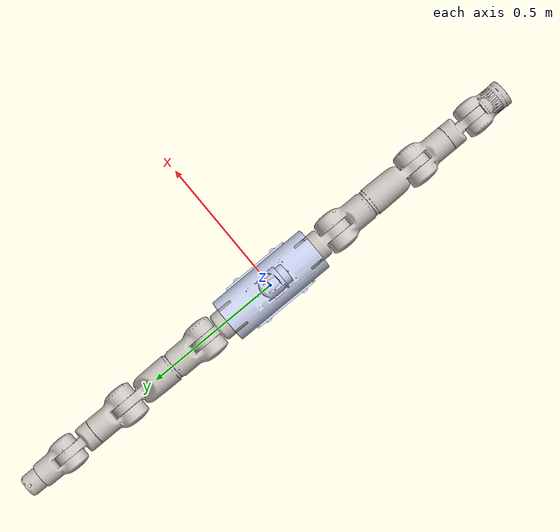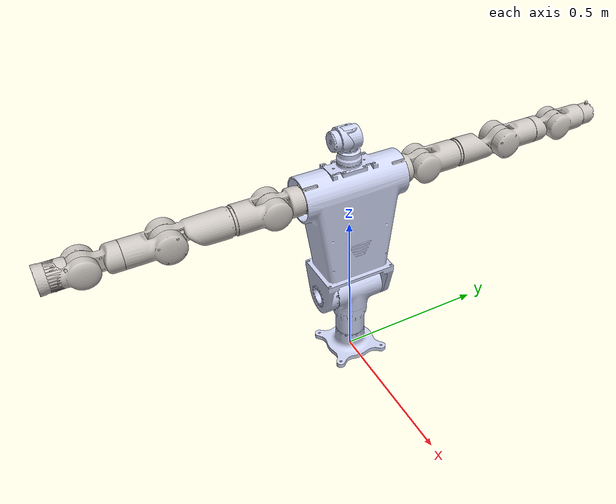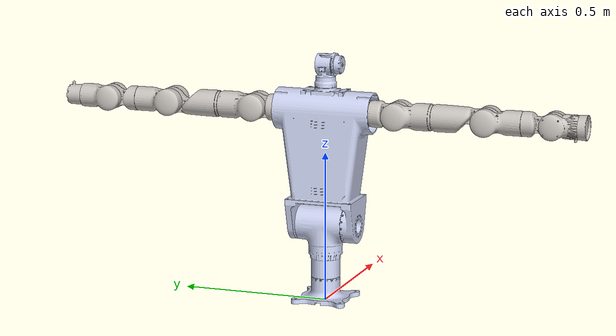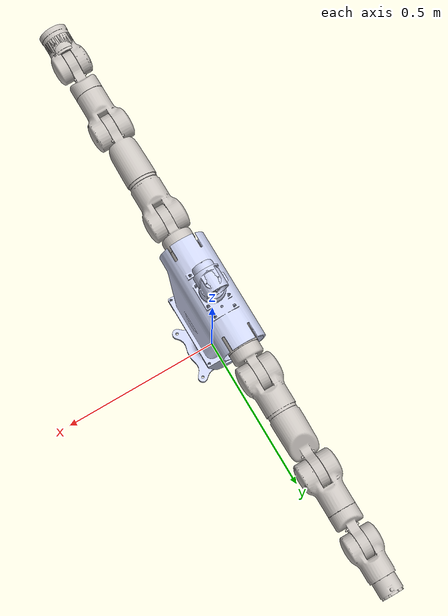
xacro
<?xml version="1.0" encoding="utf-8"?>
<robot name="h1" xmlns:xacro="http://ros.org/wiki/xacro">
  <xacro:property name = "pkg_address" value = "file://$(find h1_description)"/>

  <link name="fake_link">
      <visual>
          <origin xyz="0 0 0" rpy="0 0 0" />
          <geometry>
              <box size="0.001 0.001 0.001" />
          </geometry>
      </visual>
  </link>
  <joint name="fake_joint" type="fixed">
      <origin xyz="0 0 0.001" rpy="0 0 0" />
      <parent link="fake_link"/>
      <child link="base_link"/>
  </joint>
  <link
    name="base_link">
    <inertial>
      <origin
        xyz="0.000740033557061207 -2.89813835710668E-09 -0.238489145485207"
        rpy="0 0 0" />
      <mass
        value="1.49428013879955" />
      <inertia
        ixx="0.00364768535837031"
        ixy="-6.32316601308359E-12"
        ixz="1.99592617911289E-05"
        iyy="0.00358098929975865"
        iyz="1.694588043219E-10"
        izz="0.00589788150834425" />
    </inertial>
    <visual>
      <origin
        xyz="0 0 0.2605"
        rpy="0 0 0" />
      <geometry>
        <mesh
          filename="${pkg_address}/meshes/visual/base_link.STL" />
      </geometry>
      <material
        name="">
        <color
          rgba="0.792156862745098 0.819607843137255 0.933333333333333 1" />
      </material>
    </visual>
    <collision>
      <origin
        xyz="0 0 0.2605"
        rpy="0 0 0" />
      <geometry>
        <mesh
          filename="${pkg_address}/meshes/visual/base_link.STL" />
      </geometry>
    </collision>
  </link>
  <link
    name="link-J1">
    <inertial>
      <origin
        xyz="-3.57404692468406E-06 0.000688736209329804 -0.048157767674012"
        rpy="0 0 0" />
      <mass
        value="2.54080545346503" />
      <inertia
        ixx="0.0132749391170704"
        ixy="2.31449133162819E-07"
        ixz="-2.13862912949809E-07"
        iyy="0.0125700390893002"
        iyz="0.000459806363175522"
        izz="0.00481564822894174" />
    </inertial>
    <visual>
      <origin
        xyz="0 0 0"
        rpy="0 0 0" />
      <geometry>
        <mesh
          filename="${pkg_address}/meshes/visual/link-J1.STL" />
      </geometry>
      <material
        name="">
        <color
          rgba="0.792156862745098 0.819607843137255 0.933333333333333 1" />
      </material>
    </visual>
    <collision>
      <origin
        xyz="0 0 0"
        rpy="0 0 0" />
      <geometry>
        <mesh
          filename="${pkg_address}/meshes/visual/link-J1.STL" />
      </geometry>
    </collision>
  </link>
  <joint
    name="J1"
    type="revolute">
    <origin
      xyz="0 0 0.2605"
      rpy="0 0 0" />
    <parent
      link="base_link" />
    <child
      link="link-J1" />
    <axis
      xyz="0 0 -1" />
    <limit
      lower="-3.0543"
      upper="3.0543"
      effort="0"
      velocity="0" />
  </joint>
  <link
    name="link-Body">
    <inertial>
      <origin
        xyz="0.00246787748091909 0.249525517413171 0.000596924634415743"
        rpy="0 0 0" />
      <mass
        value="3.3194687242283" />
      <inertia
        ixx="0.0418183673295349"
        ixy="0.000751091538850231"
        ixz="2.15290683247481E-07"
        iyy="0.0233117881051513"
        iyz="-1.23200531111601E-05"
        izz="0.0309354173276001" />
    </inertial>
    <visual>
      <origin
        xyz="0 0 0"
        rpy="0 0 0" />
      <geometry>
        <mesh
          filename="${pkg_address}/meshes/visual/link-Body.STL" />
      </geometry>
      <material
        name="">
        <color
          rgba="0.792156862745098 0.819607843137255 0.933333333333333 1" />
      </material>
    </visual>
    <collision>
      <origin
        xyz="0 0 0"
        rpy="0 0 0" />
      <geometry>
        <mesh
          filename="${pkg_address}/meshes/visual/link-Body.STL" />
      </geometry>
    </collision>
  </link>
  <joint
    name="Body"
    type="revolute">
    <origin
      xyz="0 0  0"
      rpy="1.5708 0 0" />
    <parent
      link="link-J1" />
    <child
      link="link-Body" />
    <axis
      xyz="0 0 1" />
    <limit
      lower="-1"
      upper="1"
      effort="0"
      velocity="0" />
  </joint>
  <link
    name="link-R0">
    <inertial>
      <origin
        xyz="-5.36064345635264E-06 -0.000550017814507475 0.0379327952026104"
        rpy="0 0 0" />
      <mass
        value="3.46085446917408" />
      <inertia
        ixx="0.00462413861199453"
        ixy="1.10874369896872E-06"
        ixz="-5.2405532829301E-06"
        iyy="0.00500474262753878"
        iyz="-4.74046783101803E-05"
        izz="0.00508731121895653" />
    </inertial>
    <visual>
      <origin
        xyz="0 0 0"
        rpy="0 0 0" />
      <geometry>
        <mesh
          filename="${pkg_address}/meshes/visual/link-R0.STL" />
      </geometry>
      <material
        name="">
        <color
          rgba="0.776470588235294 0.756862745098039 0.737254901960784 1" />
      </material>
    </visual>
    <collision>
      <origin
        xyz="0 0 0"
        rpy="0 0 0" />
      <geometry>
        <mesh
          filename="${pkg_address}/meshes/visual/link-R0.STL" />
      </geometry>
    </collision>
  </link>
  <joint
    name="R-J0"
    type="fixed">
    <origin
      xyz="0 0.38 0.075"
      rpy="0 0 0" />
    <parent
      link="link-Body" />
    <child
      link="link-R0" />
    <axis
      xyz="0 0 0" />
    <limit
      lower="0"
      upper="0"
      effort="0"
      velocity="0" />
  </joint>
  <link
    name="link-R1">
    <inertial>
      <origin
        xyz="-0.00391495384324204 3.44953460352793E-05 -0.0356925083781218"
        rpy="0 0 0" />
      <mass
        value="3.84687374351761" />
      <inertia
        ixx="0.00397927734142592"
        ixy="1.32956171092165E-06"
        ixz="-2.11559425234039E-06"
        iyy="0.0032661789850321"
        iyz="1.14620036600572E-06"
        izz="0.00266637011175435" />
    </inertial>
    <visual>
      <origin
        xyz="0 0 0"
        rpy="0 0 0" />
      <geometry>
        <mesh
          filename="${pkg_address}/meshes/visual/link-R1.STL" />
      </geometry>
      <material
        name="">
        <color
          rgba="0.776470588235294 0.756862745098039 0.737254901960784 1" />
      </material>
    </visual>
    <collision>
      <origin
        xyz="0 0 0"
        rpy="0 0 0" />
      <geometry>
        <mesh
          filename="${pkg_address}/meshes/visual/link-R1.STL" />
      </geometry>
    </collision>
  </link>
  <joint
    name="R-J1"
    type="revolute">
    <origin
      xyz="0 0 0.172"
      rpy="0 0 0" />
    <parent
      link="link-R0" />
    <child
      link="link-R1" />
    <axis
      xyz="0 0 1" />
    <limit
      lower="-3.0543"
      upper="3.0543"
      effort="0"
      velocity="0" />
  </joint>
  <link
    name="link-R2">
    <inertial>
      <origin
        xyz="3.86490177528565E-07 -0.0452420553770264 0.0066905148073625"
        rpy="0 0 0" />
      <mass
        value="4.59473657520835" />
      <inertia
        ixx="0.0149236633858357"
        ixy="4.66017394464824E-06"
        ixz="6.67787071273893E-07"
        iyy="0.00622043748645023"
        iyz="-0.00157051411608724"
        izz="0.0130507506497026" />
    </inertial>
    <visual>
      <origin
        xyz="0 0 0"
        rpy="0 0 0" />
      <geometry>
        <mesh
          filename="${pkg_address}/meshes/visual/link-R2.STL" />
      </geometry>
      <material
        name="">
        <color
          rgba="0.776470588235294 0.756862745098039 0.737254901960784 1" />
      </material>
    </visual>
    <collision>
      <origin
        xyz="0 0 0"
        rpy="0 0 0" />
      <geometry>
        <mesh
          filename="${pkg_address}/meshes/visual/link-R2.STL" />
      </geometry>
    </collision>
  </link>
  <joint
    name="R-J2"
    type="revolute">
    <origin
      xyz="0 0 0"
      rpy="-1.5708 0 -1.5708" />
    <parent
      link="link-R1" />
    <child
      link="link-R2" />
    <axis
      xyz="0 0 1" />
    <limit
      lower="-1.6"
      upper="1.6"
      effort="0"
      velocity="0" />
  </joint>
  <link
    name="link-R3">
    <inertial>
      <origin
        xyz="0.00324047095926137 0.00110288578196249 -0.0819918016100478"
        rpy="0 0 0" />
      <mass
        value="4.5854332927521" />
      <inertia
        ixx="0.0115360168840183"
        ixy="4.15752513335911E-06"
        ixz="1.48969963687349E-05"
        iyy="0.0108939919528904"
        iyz="-0.000234057856310516"
        izz="0.00358981276852546" />
    </inertial>
    <visual>
      <origin
        xyz="0 0 0"
        rpy="0 0 0" />
      <geometry>
        <mesh
          filename="${pkg_address}/meshes/visual/link-R3.STL" />
      </geometry>
      <material
        name="">
        <color
          rgba="0.776470588235294 0.756862745098039 0.737254901960784 1" />
      </material>
    </visual>
    <collision>
      <origin
        xyz="0 0 0"
        rpy="0 0 0" />
      <geometry>
        <mesh
          filename="${pkg_address}/meshes/visual/link-R3.STL" />
      </geometry>
    </collision>
  </link>
  <joint
    name="R-J3"
    type="revolute">
    <origin
      xyz="0 -0.3 0"
      rpy="1.5708 -1.5708 0" />
    <parent
      link="link-R2" />
    <child
      link="link-R3" />
    <axis
      xyz="0 0 1" />
    <limit
      lower="-3.0543"
      upper="3.0543"
      effort="0"
      velocity="0" />
  </joint>
  <link
    name="link-R4">
    <inertial>
      <origin
        xyz="3.18423349929819E-05 -0.0368779539653267 -0.0139387490180007"
        rpy="0 0 0" />
      <mass
        value="3.87071086851708" />
      <inertia
        ixx="0.0111305426375428"
        ixy="-2.98701447860813E-06"
        ixz="-4.85972985817775E-06"
        iyy="0.00460974095759748"
        iyz="0.00198988285390344"
        izz="0.00993670762454385" />
    </inertial>
    <visual>
      <origin
        xyz="0 0 0"
        rpy="0 0 0" />
      <geometry>
        <mesh
          filename="${pkg_address}/meshes/visual/link-R4.STL" />
      </geometry>
      <material
        name="">
        <color
          rgba="0.776470588235294 0.756862745098039 0.737254901960784 1" />
      </material>
    </visual>
    <collision>
      <origin
        xyz="0 0 0"
        rpy="0 0 0" />
      <geometry>
        <mesh
          filename="${pkg_address}/meshes/visual/link-R4.STL" />
      </geometry>
    </collision>
  </link>
  <joint
    name="R-J4"
    type="revolute">
    <origin
      xyz="0 0 0"
      rpy="-1.5708 0 -1.5708" />
    <parent
      link="link-R3" />
    <child
      link="link-R4" />
    <axis
      xyz="0 0 1" />
    <limit
      lower="-1.7"
      upper="2.2"
      effort="0"
      velocity="0" />
  </joint>
  <link
    name="link-R5">
    <inertial>
      <origin
        xyz="0.00322215689066335 7.4948711252687E-05 -0.0572975679008713"
        rpy="0 0 0" />
      <mass
        value="1.82124545231834" />
      <inertia
        ixx="0.00278208630631441"
        ixy="7.08235437752721E-08"
        ixz="-4.67880502096544E-05"
        iyy="0.00248903276285"
        iyz="8.97378635589642E-07"
        izz="0.00124650141864315" />
    </inertial>
    <visual>
      <origin
        xyz="0 0 0"
        rpy="0 0 0" />
      <geometry>
        <mesh
          filename="${pkg_address}/meshes/visual/link-R5.STL" />
      </geometry>
      <material
        name="">
        <color
          rgba="0.776470588235294 0.756862745098039 0.737254901960784 1" />
      </material>
    </visual>
    <collision>
      <origin
        xyz="0 0 0"
        rpy="0 0 0" />
      <geometry>
        <mesh
          filename="${pkg_address}/meshes/visual/link-R5.STL" />
      </geometry>
    </collision>
  </link>
  <joint
    name="R-J5"
    type="revolute">
    <origin
      xyz="0 -0.22 0"
      rpy="1.5708 -1.5708 0" />
    <parent
      link="link-R4" />
    <child
      link="link-R5" />
    <axis
      xyz="0 0 1" />
    <limit
      lower="-3.0543"
      upper="3.0543"
      effort="0"
      velocity="0" />
  </joint>
  <link
    name="link-R6">
    <inertial>
      <origin
        xyz="-9.36842091880941E-06 -0.0325947019861453 -0.0133468991574915"
        rpy="0 0 0" />
      <mass
        value="2.86918680878616" />
      <inertia
        ixx="0.00331600824470928"
        ixy="-5.37053937468114E-07"
        ixz="1.34740423005078E-06"
        iyy="0.00200841766148693"
        iyz="0.000558066732796783"
        izz="0.00366760091811977" />
    </inertial>
    <visual>
      <origin
        xyz="0 0 0"
        rpy="0 0 0" />
      <geometry>
        <mesh
          filename="${pkg_address}/meshes/visual/link-R6.STL" />
      </geometry>
      <material
        name="">
        <color
          rgba="0.776470588235294 0.756862745098039 0.737254901960784 1" />
      </material>
    </visual>
    <collision>
      <origin
        xyz="0 0 0"
        rpy="0 0 0" />
      <geometry>
        <mesh
          filename="${pkg_address}/meshes/visual/link-R6.STL" />
      </geometry>
    </collision>
  </link>
  <joint
    name="R-J6"
    type="revolute">
    <origin
      xyz="0 0 0"
      rpy="-1.5708 0 -1.5708" />
    <parent
      link="link-R5" />
    <child
      link="link-R6" />
    <axis
      xyz="0 0 1" />
    <limit
      lower="-2"
      upper="2"
      effort="0"
      velocity="0" />
  </joint>
  <link
    name="link-R7">
    <inertial>
      <origin
        xyz="-1.17764460005164E-05 -4.94366788061917E-05 -0.0268906982201492"
        rpy="0 0 0" />
      <mass
        value="0.640550089168939" />
      <inertia
        ixx="0.000322001272956544"
        ixy="-1.70396644856445E-09"
        ixz="2.11407033295688E-08"
        iyy="0.000333657568863188"
        iyz="5.6325572115463E-07"
        izz="0.000473517445389121" />
    </inertial>
    <visual>
      <origin
        xyz="0 0 0"
        rpy="0 0 0" />
      <geometry>
        <mesh
          filename="${pkg_address}/meshes/visual/link-R7.STL" />
      </geometry>
      <material
        name="">
        <color
          rgba="0.776470588235294 0.756862745098039 0.737254901960784 1" />
      </material>
    </visual>
    <collision>
      <origin
        xyz="0 0 0"
        rpy="0 0 0" />
      <geometry>
        <mesh
          filename="${pkg_address}/meshes/visual/link-R7.STL" />
      </geometry>
    </collision>
  </link>
  <joint
    name="R-J7"
    type="revolute">
    <origin
      xyz="0 -0.154 0"
      rpy="1.5708 -1.5708 0" />
    <parent
      link="link-R6" />
    <child
      link="link-R7" />
    <axis
      xyz="0 0 1" />
    <limit
      lower="-3.0543"
      upper="3.0543"
      effort="0"
      velocity="0" />
  </joint>
  <link
    name="link-L0">
    <inertial>
      <origin
        xyz="-8.87059234046067E-06 0.000550752555020795 0.0379327152282237"
        rpy="0 0 0" />
      <mass
        value="3.4609012252728" />
      <inertia
        ixx="0.00462447118331535"
        ixy="9.94202742834784E-07"
        ixz="-5.60268944341054E-06"
        iyy="0.00500473280410574"
        iyz="4.4126715549466E-05"
        izz="0.00508763431490107" />
    </inertial>
    <visual>
      <origin
        xyz="0 0 0"
        rpy="0 0 0" />
      <geometry>
        <mesh
          filename="${pkg_address}/meshes/visual/link-L0.STL" />
      </geometry>
      <material
        name="">
        <color
          rgba="0.776470588235294 0.756862745098039 0.737254901960784 1" />
      </material>
    </visual>
    <collision>
      <origin
        xyz="0 0 0"
        rpy="0 0 0" />
      <geometry>
        <mesh
          filename="${pkg_address}/meshes/visual/link-L0.STL" />
      </geometry>
    </collision>
  </link>
  <joint
    name="L-J0"
    type="fixed">
    <origin
      xyz="0 0.38 -0.075"
      rpy="-3.1416 0 0" />
    <parent
      link="link-Body" />
    <child
      link="link-L0" />
    <axis
      xyz="0 0 0" />
  </joint>
  <link
    name="link-L1">
    <inertial>
      <origin
        xyz="-0.00391495384336187 3.44953459122666E-05 -0.0356925083702135"
        rpy="0 0 0" />
      <mass
        value="3.84687374350624" />
      <inertia
        ixx="0.00397929510085391"
        ixy="1.32956168786287E-06"
        ixz="-2.11559421739801E-06"
        iyy="0.00326619674443425"
        iyz="1.14620028338654E-06"
        izz="0.00266637011180378" />
    </inertial>
    <visual>
      <origin
        xyz="0 0 0"
        rpy="0 0 0" />
      <geometry>
        <mesh
          filename="${pkg_address}/meshes/visual/link-L1.STL" />
      </geometry>
      <material
        name="">
        <color
          rgba="0.776470588235294 0.756862745098039 0.737254901960784 1" />
      </material>
    </visual>
    <collision>
      <origin
        xyz="0 0 0"
        rpy="0 0 0" />
      <geometry>
        <mesh
          filename="${pkg_address}/meshes/visual/link-L1.STL" />
      </geometry>
    </collision>
  </link>
  <joint
    name="L-J1"
    type="revolute">
    <origin
      xyz="0 0 0.172"
      rpy="0 0 0" />
    <parent
      link="link-L0" />
    <child
      link="link-L1" />
    <axis
      xyz="0 0 1" />
    <limit
      lower="-3.0543"
      upper="3.0543"
      effort="0"
      velocity="0" />
  </joint>
  <link
    name="link-L2">
    <inertial>
      <origin
        xyz="-3.86565513488257E-07 -0.0452420554170123 -0.00669051472875721"
        rpy="0 0 0" />
      <mass
        value="4.59473656084855" />
      <inertia
        ixx="0.0149236633705579"
        ixy="-4.66016937621526E-06"
        ixz="6.6777760684643E-07"
        iyy="0.00622043746458328"
        iyz="0.00157051411090369"
        izz="0.0130507506384638" />
    </inertial>
    <visual>
      <origin
        xyz="0 0 0"
        rpy="0 0 0" />
      <geometry>
        <mesh
          filename="${pkg_address}/meshes/visual/link-L2.STL" />
      </geometry>
      <material
        name="">
        <color
          rgba="0.776470588235294 0.756862745098039 0.737254901960784 1" />
      </material>
    </visual>
    <collision>
      <origin
        xyz="0 0 0"
        rpy="0 0 0" />
      <geometry>
        <mesh
          filename="${pkg_address}/meshes/visual/link-L2.STL" />
      </geometry>
    </collision>
  </link>
  <joint
    name="L-J2"
    type="revolute">
    <origin
      xyz="0 0 0"
      rpy="-1.5708 0 1.5708" />
    <parent
      link="link-L1" />
    <child
      link="link-L2" />
    <axis
      xyz="0 0 1" />
    <limit
      lower="-1.6"
      upper="1.6"
      effort="0"
      velocity="0" />
  </joint>
  <link
    name="link-L3">
    <inertial>
      <origin
        xyz="-0.00324047095788919 -0.00110288577937256 -0.081991801606545"
        rpy="0 0 0" />
      <mass
        value="4.58543329469384" />
      <inertia
        ixx="0.011536016884983"
        ixy="4.15752513490069E-06"
        ixz="-1.48969963644205E-05"
        iyy="0.0108939919537677"
        iyz="0.000234057856009124"
        izz="0.00358981276861222" />
    </inertial>
    <visual>
      <origin
        xyz="0 0 0"
        rpy="0 0 0" />
      <geometry>
        <mesh
          filename="${pkg_address}/meshes/visual/link-L3.STL" />
      </geometry>
      <material
        name="">
        <color
          rgba="0.776470588235294 0.756862745098039 0.737254901960784 1" />
      </material>
    </visual>
    <collision>
      <origin
        xyz="0 0 0"
        rpy="0 0 0" />
      <geometry>
        <mesh
          filename="${pkg_address}/meshes/visual/link-L3.STL" />
      </geometry>
    </collision>
  </link>
  <joint
    name="L-J3"
    type="revolute">
    <origin
      xyz="0 -0.3 0"
      rpy="1.5708 1.5708 0" />
    <parent
      link="link-L2" />
    <child
      link="link-L3" />
    <axis
      xyz="0 0 1" />
    <limit
      lower="-3.0543"
      upper="3.0543"
      effort="0"
      velocity="0" />
  </joint>
  <link
    name="link-L4">
    <inertial>
      <origin
        xyz="3.1841633544194E-05 -0.0368779533256999 -0.013938744195014"
        rpy="0 0 0" />
      <mass
        value="3.87071095191786" />
      <inertia
        ixx="0.0111305435051538"
        ixy="-2.98707077310507E-06"
        ixz="-4.85932424382727E-06"
        iyy="0.00460974197047289"
        iyz="0.00198988284541413"
        izz="0.0099367079000926" />
    </inertial>
    <visual>
      <origin
        xyz="0 0 0"
        rpy="0 0 0" />
      <geometry>
        <mesh
          filename="${pkg_address}/meshes/visual/link-L4.STL" />
      </geometry>
      <material
        name="">
        <color
          rgba="0.776470588235294 0.756862745098039 0.737254901960784 1" />
      </material>
    </visual>
    <collision>
      <origin
        xyz="0 0 0"
        rpy="0 0 0" />
      <geometry>
        <mesh
          filename="${pkg_address}/meshes/visual/link-L4.STL" />
      </geometry>
    </collision>
  </link>
  <joint
    name="L-J4"
    type="revolute">
    <origin
      xyz="0 0 0"
      rpy="-1.5708 0 1.5708" />
    <parent
      link="link-L3" />
    <child
      link="link-L4" />
    <axis
      xyz="0 0 1" />
    <limit
      lower="-2.2"
      upper="1.7"
      effort="0"
      velocity="0" />
  </joint>
  <link
    name="link-L5">
    <inertial>
      <origin
        xyz="-0.00322215689066343 -7.49487112514657E-05 -0.0572975679008711"
        rpy="0 0 0" />
      <mass
        value="1.82124545231832" />
      <inertia
        ixx="0.0027820863063144"
        ixy="7.08235437742543E-08"
        ixz="4.67880502096515E-05"
        iyy="0.00248903276284999"
        iyz="-8.97378635588735E-07"
        izz="0.00124650141864314" />
    </inertial>
    <visual>
      <origin
        xyz="0 0 0"
        rpy="0 0 0" />
      <geometry>
        <mesh
          filename="${pkg_address}/meshes/visual/link-L5.STL" />
      </geometry>
      <material
        name="">
        <color
          rgba="0.776470588235294 0.756862745098039 0.737254901960784 1" />
      </material>
    </visual>
    <collision>
      <origin
        xyz="0 0 0"
        rpy="0 0 0" />
      <geometry>
        <mesh
          filename="${pkg_address}/meshes/visual/link-L5.STL" />
      </geometry>
    </collision>
  </link>
  <joint
    name="L-J5"
    type="revolute">
    <origin
      xyz="0 -0.22 0"
      rpy="1.5708 1.5708 0" />
    <parent
      link="link-L4" />
    <child
      link="link-L5" />
    <axis
      xyz="0 0 1" />
    <limit
      lower="-3.0543"
      upper="3.0543"
      effort="0"
      velocity="0" />
  </joint>
  <link
    name="link-L6">
    <inertial>
      <origin
        xyz="-9.36842095644597E-06 -0.0325947019861459 -0.013346899157544"
        rpy="0 0 0" />
      <mass
        value="2.86918680878108" />
      <inertia
        ixx="0.00331600824470316"
        ixy="-5.37053935091679E-07"
        ixz="1.3474042330072E-06"
        iyy="0.00200841766148088"
        iyz="0.00055806673279974"
        izz="0.00366760091811487" />
    </inertial>
    <visual>
      <origin
        xyz="0 0 0"
        rpy="0 0 0" />
      <geometry>
        <mesh
          filename="${pkg_address}/meshes/visual/link-L6.STL" />
      </geometry>
      <material
        name="">
        <color
          rgba="0.776470588235294 0.756862745098039 0.737254901960784 1" />
      </material>
    </visual>
    <collision>
      <origin
        xyz="0 0 0"
        rpy="0 0 0" />
      <geometry>
        <mesh
          filename="${pkg_address}/meshes/visual/link-L6.STL" />
      </geometry>
    </collision>
  </link>
  <joint
    name="L-J6"
    type="revolute">
    <origin
      xyz="0 0 0"
      rpy="-1.5708 0 1.5708" />
    <parent
      link="link-L5" />
    <child
      link="link-L6" />
    <axis
      xyz="0 0 1" />
    <limit
      lower="-2"
      upper="2"
      effort="0"
      velocity="0" />
  </joint>
  <link
    name="link-L7">
    <inertial>
      <origin
        xyz="1.17764431016314E-05 4.94366771461863E-05 -0.0268906982202844"
        rpy="0 0 0" />
      <mass
        value="0.640550089261562" />
      <inertia
        ixx="0.000322001272975965"
        ixy="-1.70398909748883E-09"
        ixz="-2.11406870898951E-08"
        iyy="0.000333657568909658"
        iyz="-5.63255711862325E-07"
        izz="0.000473517445441665" />
    </inertial>
    <visual>
      <origin
        xyz="0 0 0"
        rpy="0 0 0" />
      <geometry>
        <mesh
          filename="${pkg_address}/meshes/visual/link-L7.STL" />
      </geometry>
      <material
        name="">
        <color
          rgba="0.776470588235294 0.756862745098039 0.737254901960784 1" />
      </material>
    </visual>
    <collision>
      <origin
        xyz="0 0 0"
        rpy="0 0 0" />
      <geometry>
        <mesh
          filename="${pkg_address}/meshes/visual/link-L7.STL" />
      </geometry>
    </collision>
  </link>
  <joint
    name="L-J7"
    type="revolute">
    <origin
      xyz="0 -0.154 0"
      rpy="1.5708 1.5708 0" />
    <parent
      link="link-L6" />
    <child
      link="link-L7" />
    <axis
      xyz="0 0 1" />
    <limit
      lower="-3.0543"
      upper="3.0543"
      effort="0"
      velocity="0" />
  </joint>
  <link
    name="link-H0">
    <inertial>
      <origin
        xyz="2.77417069748782E-06 -0.00801860812416875 -0.0404494724916487"
        rpy="0 0 0" />
      <mass
        value="0.533047406480681" />
      <inertia
        ixx="0.000692103895288128"
        ixy="-1.48199773270518E-08"
        ixz="-2.39235593860357E-08"
        iyy="0.000709375331980261"
        iyz="4.60043825948019E-05"
        izz="0.000267854166625837" />
    </inertial>
    <visual>
      <origin
        xyz="0 0 0"
        rpy="0 0 0" />
      <geometry>
        <mesh
          filename="${pkg_address}/meshes/visual/link-H0.STL" />
      </geometry>
      <material
        name="">
        <color
          rgba="0.792156862745098 0.819607843137255 0.933333333333333 1" />
      </material>
    </visual>
    <collision>
      <origin
        xyz="0 0 0"
        rpy="0 0 0" />
      <geometry>
        <mesh
          filename="${pkg_address}/meshes/visual/link-H0.STL" />
      </geometry>
    </collision>
  </link>
  <joint
    name="H-J1"
    type="revolute">
    <origin
      xyz="0 0.535 0"
      rpy="-1.5708 0 0" />
    <parent
      link="link-Body" />
    <child
      link="link-H0" />
    <axis
      xyz="0 0 1" />
    <limit
      lower="-1"
      upper="1"
      effort="0"
      velocity="0" />
  </joint>
  <link
    name="link-H1">
    <inertial>
      <origin
        xyz="0.0098437998944257 -0.0888857409529311 0.00256703993477317"
        rpy="0 0 0" />
      <mass
        value="0.436772949848794" />
      <inertia
        ixx="0.000635413918611848"
        ixy="1.04102465959542E-05"
        ixz="-2.94933871253236E-07"
        iyy="0.000648875246390544"
        iyz="1.19746555869357E-05"
        izz="0.000441756556005861" />
    </inertial>
    <visual>
      <origin
        xyz="0 0 0"
        rpy="0 0 0" />
      <geometry>
        <mesh
          filename="${pkg_address}/meshes/visual/link-H1.STL" />
      </geometry>
      <material
        name="">
        <color
          rgba="0.792156862745098 0.819607843137255 0.933333333333333 1" />
      </material>
    </visual>
    <collision>
      <origin
        xyz="0 0 0"
        rpy="0 0 0" />
      <geometry>
        <mesh
          filename="${pkg_address}/meshes/visual/link-H1.STL" />
      </geometry>
    </collision>
  </link>
  <joint
    name="H-J2"
    type="revolute">
    <origin
      xyz="0 0 0"
      rpy="-1.5708 0 0" />
    <parent
      link="link-H0" />
    <child
      link="link-H1" />
    <axis
      xyz="0 0 1" />
    <limit
      lower="-1"
      upper="1"
      effort="0"
      velocity="0" />
  </joint>
</robot>
